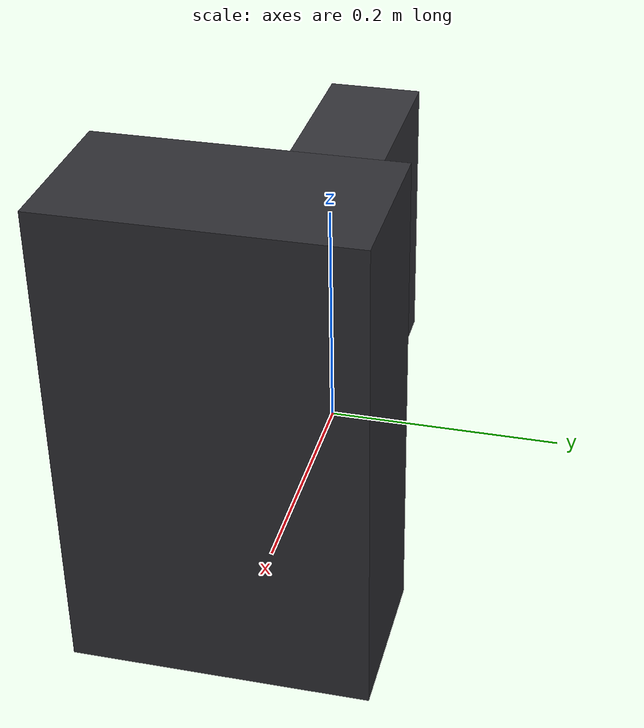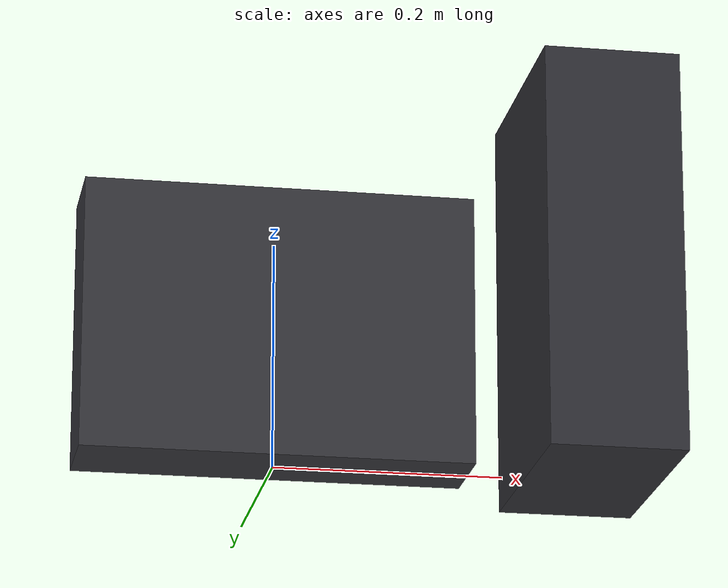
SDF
<?xml version='1.0' encoding='utf-8'?>
<sdf version="1.6">
  <model name="computer">
    <static>true</static>
    <link name="link">
      <collision name="collision_1">
        <pose>0 0 0.12 0 0 0</pose>
        <geometry>
          <box>
            <size>0.34 0.08 0.24</size>
          </box>
        </geometry>
      </collision>
      <visual name="visual_1">
        <pose>0 0 0.12 0 0 0</pose>
        <geometry>
          <box>
            <size>0.34 0.08 0.24</size>
          </box>
        </geometry>
        <material>
          <ambient>0.2 0.2 0.22 1</ambient>
          <diffuse>0.2 0.2 0.22 1</diffuse>
          <specular>0.08 0.08 0.08 1</specular>
        </material>
      </visual>
      <collision name="collision_2">
        <pose>0.28 0 0.18 0 0 0</pose>
        <geometry>
          <box>
            <size>0.12 0.22 0.36</size>
          </box>
        </geometry>
      </collision>
      <visual name="visual_2">
        <pose>0.28 0 0.18 0 0 0</pose>
        <geometry>
          <box>
            <size>0.12 0.22 0.36</size>
          </box>
        </geometry>
        <material>
          <ambient>0.18 0.18 0.2 1</ambient>
          <diffuse>0.18 0.18 0.2 1</diffuse>
          <specular>0.08 0.08 0.08 1</specular>
        </material>
      </visual>
    </link>
  </model>
</sdf>
